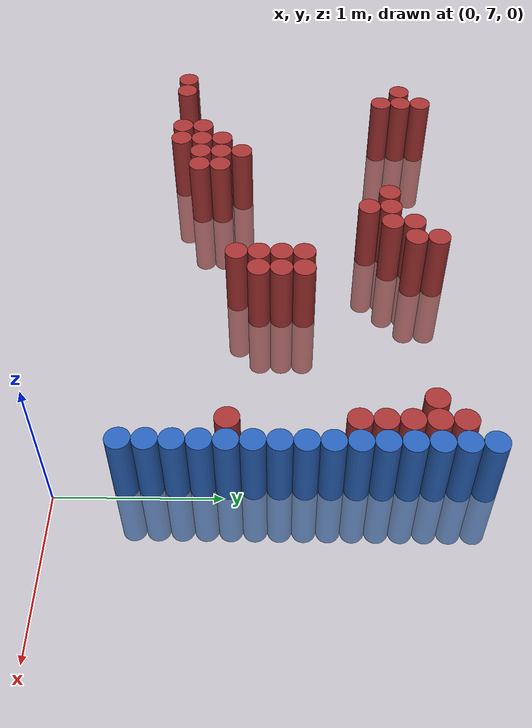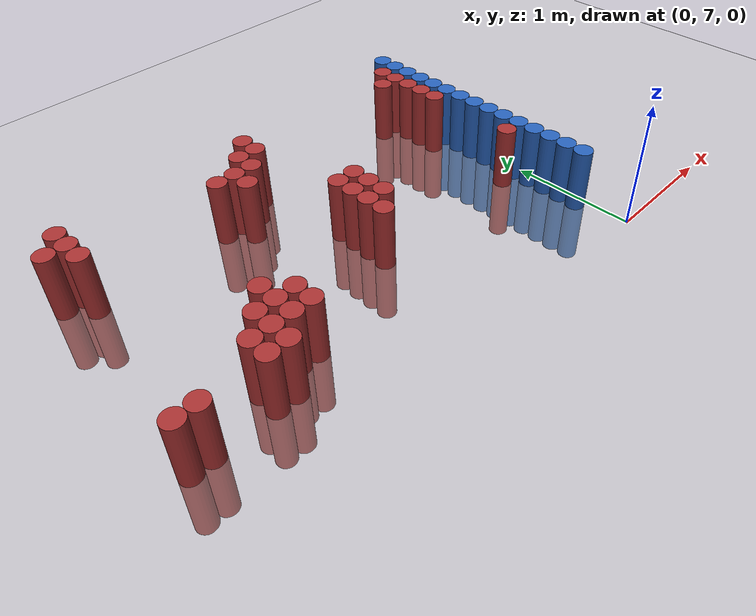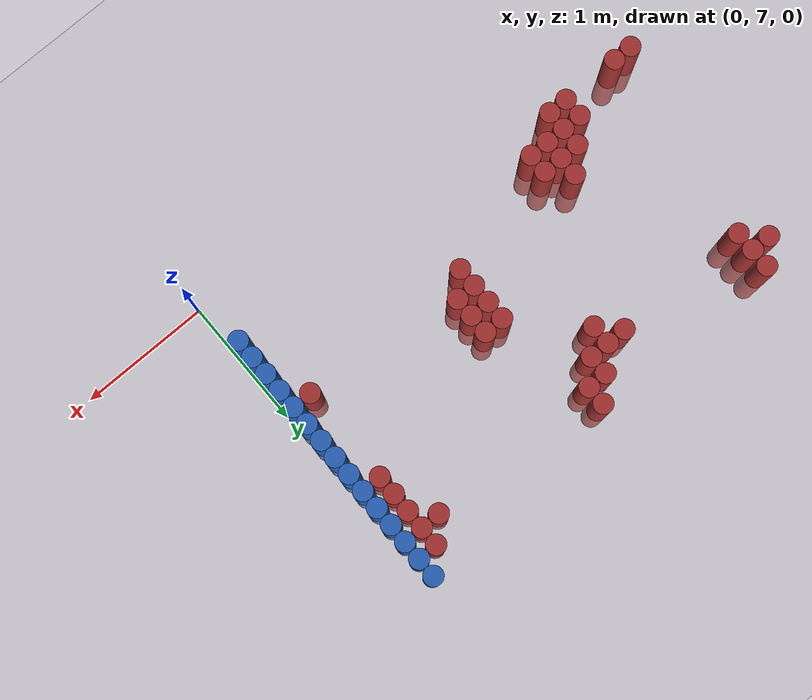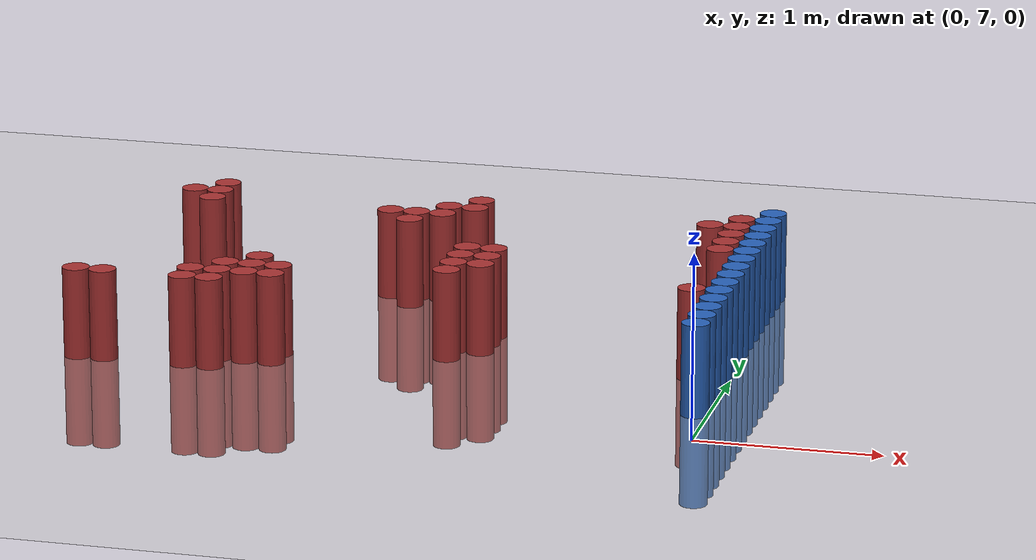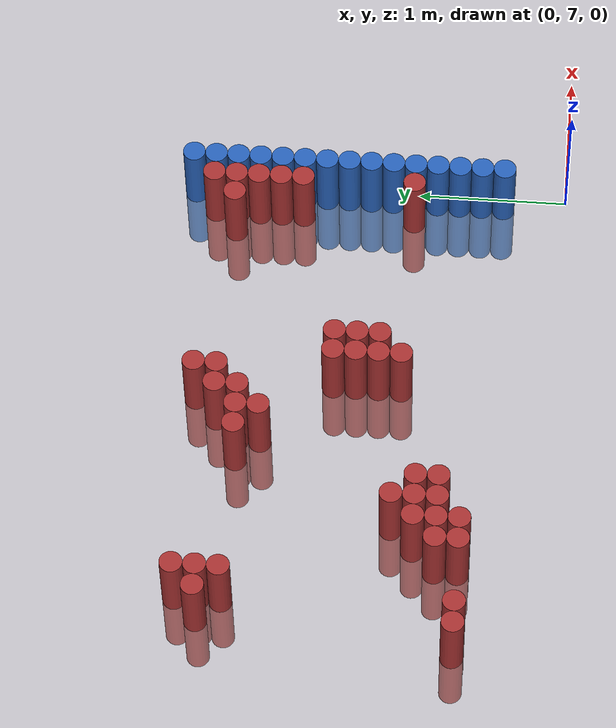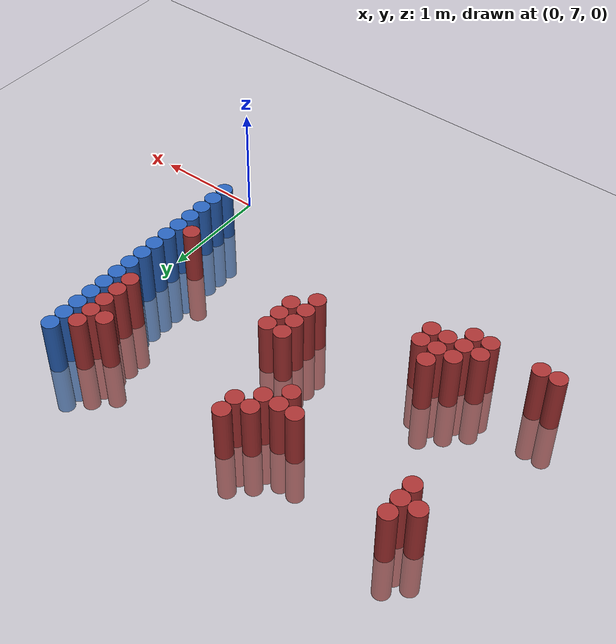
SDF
<sdf version="1.6">
 <world name="default">
  <model name="ground_plane">
   <static>1</static>
   <link name="link">
    <collision name="collision">
     <geometry><plane><normal>0 0 1</normal><size>100 100</size></plane></geometry>
     <surface><friction><ode><mu>100</mu><mu2>50</mu2></ode></friction></surface>
    </collision>
    <visual name="visual">
     <cast_shadows>0</cast_shadows>
     <geometry><plane><normal>0 0 1</normal><size>100 100</size></plane></geometry>
     <material>
      <script><uri>file://media/materials/scripts/gazebo.material</uri><name>Gazebo/Grey</name></script>
     </material>
    </visual>
   </link>
  </model>
  <model name="unit_cylinder_158">
   <static>1</static>
   <pose>-3.525000 7.575000 0.000000 0.000000 0.000000 0.000000</pose>
   <link name="link">
    <inertial>
     <mass>1</mass>
     <inertia><ixx>0.145833</ixx><ixy>0</ixy><ixz>0</ixz><iyy>0.145833</iyy><iyz>0</iyz><izz>0.125</izz></inertia>
    </inertial>
    <collision name="collision">
     <geometry><cylinder><radius>0.075000</radius><length>1</length></cylinder></geometry>
    </collision>
    <visual name="visual">
     <geometry><cylinder><radius>0.075000</radius><length>1</length></cylinder></geometry>
     <material>
      <ambient>0.648000 0.192000 0.192000 1</ambient>
      <diffuse>0.648000 0.192000 0.192000 1</diffuse>
     </material>
     <material>
      <script><name>Gazebo/Grey</name><uri>file://media/materials/scripts/gazebo.material</uri></script>
     </material>
    </visual>
   </link>
  </model>
  <model name="unit_cylinder_165">
   <static>1</static>
   <pose>-3.375000 7.575000 0.000000 0.000000 0.000000 0.000000</pose>
   <link name="link">
    <inertial>
     <mass>1</mass>
     <inertia><ixx>0.145833</ixx><ixy>0</ixy><ixz>0</ixz><iyy>0.145833</iyy><iyz>0</iyz><izz>0.125</izz></inertia>
    </inertial>
    <collision name="collision">
     <geometry><cylinder><radius>0.075000</radius><length>1</length></cylinder></geometry>
    </collision>
    <visual name="visual">
     <geometry><cylinder><radius>0.075000</radius><length>1</length></cylinder></geometry>
     <material>
      <ambient>0.648000 0.192000 0.192000 1</ambient>
      <diffuse>0.648000 0.192000 0.192000 1</diffuse>
     </material>
     <material>
      <script><name>Gazebo/Grey</name><uri>file://media/materials/scripts/gazebo.material</uri></script>
     </material>
    </visual>
   </link>
  </model>
  <model name="unit_cylinder_166">
   <static>1</static>
   <pose>-3.375000 9.225000 0.000000 0.000000 0.000000 0.000000</pose>
   <link name="link">
    <inertial>
     <mass>1</mass>
     <inertia><ixx>0.145833</ixx><ixy>0</ixy><ixz>0</ixz><iyy>0.145833</iyy><iyz>0</iyz><izz>0.125</izz></inertia>
    </inertial>
    <collision name="collision">
     <geometry><cylinder><radius>0.075000</radius><length>1</length></cylinder></geometry>
    </collision>
    <visual name="visual">
     <geometry><cylinder><radius>0.075000</radius><length>1</length></cylinder></geometry>
     <material>
      <ambient>0.648000 0.192000 0.192000 1</ambient>
      <diffuse>0.648000 0.192000 0.192000 1</diffuse>
     </material>
     <material>
      <script><name>Gazebo/Grey</name><uri>file://media/materials/scripts/gazebo.material</uri></script>
     </material>
    </visual>
   </link>
  </model>
  <model name="unit_cylinder_171">
   <static>1</static>
   <pose>-3.225000 9.075000 0.000000 0.000000 0.000000 0.000000</pose>
   <link name="link">
    <inertial>
     <mass>1</mass>
     <inertia><ixx>0.145833</ixx><ixy>0</ixy><ixz>0</ixz><iyy>0.145833</iyy><iyz>0</iyz><izz>0.125</izz></inertia>
    </inertial>
    <collision name="collision">
     <geometry><cylinder><radius>0.075000</radius><length>1</length></cylinder></geometry>
    </collision>
    <visual name="visual">
     <geometry><cylinder><radius>0.075000</radius><length>1</length></cylinder></geometry>
     <material>
      <ambient>0.648000 0.192000 0.192000 1</ambient>
      <diffuse>0.648000 0.192000 0.192000 1</diffuse>
     </material>
     <material>
      <script><name>Gazebo/Grey</name><uri>file://media/materials/scripts/gazebo.material</uri></script>
     </material>
    </visual>
   </link>
  </model>
  <model name="unit_cylinder_172">
   <static>1</static>
   <pose>-3.225000 9.225000 0.000000 0.000000 0.000000 0.000000</pose>
   <link name="link">
    <inertial>
     <mass>1</mass>
     <inertia><ixx>0.145833</ixx><ixy>0</ixy><ixz>0</ixz><iyy>0.145833</iyy><iyz>0</iyz><izz>0.125</izz></inertia>
    </inertial>
    <collision name="collision">
     <geometry><cylinder><radius>0.075000</radius><length>1</length></cylinder></geometry>
    </collision>
    <visual name="visual">
     <geometry><cylinder><radius>0.075000</radius><length>1</length></cylinder></geometry>
     <material>
      <ambient>0.648000 0.192000 0.192000 1</ambient>
      <diffuse>0.648000 0.192000 0.192000 1</diffuse>
     </material>
     <material>
      <script><name>Gazebo/Grey</name><uri>file://media/materials/scripts/gazebo.material</uri></script>
     </material>
    </visual>
   </link>
  </model>
  <model name="unit_cylinder_173">
   <static>1</static>
   <pose>-3.225000 9.375000 0.000000 0.000000 0.000000 0.000000</pose>
   <link name="link">
    <inertial>
     <mass>1</mass>
     <inertia><ixx>0.145833</ixx><ixy>0</ixy><ixz>0</ixz><iyy>0.145833</iyy><iyz>0</iyz><izz>0.125</izz></inertia>
    </inertial>
    <collision name="collision">
     <geometry><cylinder><radius>0.075000</radius><length>1</length></cylinder></geometry>
    </collision>
    <visual name="visual">
     <geometry><cylinder><radius>0.075000</radius><length>1</length></cylinder></geometry>
     <material>
      <ambient>0.648000 0.192000 0.192000 1</ambient>
      <diffuse>0.648000 0.192000 0.192000 1</diffuse>
     </material>
     <material>
      <script><name>Gazebo/Grey</name><uri>file://media/materials/scripts/gazebo.material</uri></script>
     </material>
    </visual>
   </link>
  </model>
  <model name="unit_cylinder_179">
   <static>1</static>
   <pose>-2.925000 7.575000 0.000000 0.000000 0.000000 0.000000</pose>
   <link name="link">
    <inertial>
     <mass>1</mass>
     <inertia><ixx>0.145833</ixx><ixy>0</ixy><ixz>0</ixz><iyy>0.145833</iyy><iyz>0</iyz><izz>0.125</izz></inertia>
    </inertial>
    <collision name="collision">
     <geometry><cylinder><radius>0.075000</radius><length>1</length></cylinder></geometry>
    </collision>
    <visual name="visual">
     <geometry><cylinder><radius>0.075000</radius><length>1</length></cylinder></geometry>
     <material>
      <ambient>0.648000 0.192000 0.192000 1</ambient>
      <diffuse>0.648000 0.192000 0.192000 1</diffuse>
     </material>
     <material>
      <script><name>Gazebo/Grey</name><uri>file://media/materials/scripts/gazebo.material</uri></script>
     </material>
    </visual>
   </link>
  </model>
  <model name="unit_cylinder_180">
   <static>1</static>
   <pose>-2.925000 7.725000 0.000000 0.000000 0.000000 0.000000</pose>
   <link name="link">
    <inertial>
     <mass>1</mass>
     <inertia><ixx>0.145833</ixx><ixy>0</ixy><ixz>0</ixz><iyy>0.145833</iyy><iyz>0</iyz><izz>0.125</izz></inertia>
    </inertial>
    <collision name="collision">
     <geometry><cylinder><radius>0.075000</radius><length>1</length></cylinder></geometry>
    </collision>
    <visual name="visual">
     <geometry><cylinder><radius>0.075000</radius><length>1</length></cylinder></geometry>
     <material>
      <ambient>0.648000 0.192000 0.192000 1</ambient>
      <diffuse>0.648000 0.192000 0.192000 1</diffuse>
     </material>
     <material>
      <script><name>Gazebo/Grey</name><uri>file://media/materials/scripts/gazebo.material</uri></script>
     </material>
    </visual>
   </link>
  </model>
  <model name="unit_cylinder_184">
   <static>1</static>
   <pose>-2.775000 7.575000 0.000000 0.000000 0.000000 0.000000</pose>
   <link name="link">
    <inertial>
     <mass>1</mass>
     <inertia><ixx>0.145833</ixx><ixy>0</ixy><ixz>0</ixz><iyy>0.145833</iyy><iyz>0</iyz><izz>0.125</izz></inertia>
    </inertial>
    <collision name="collision">
     <geometry><cylinder><radius>0.075000</radius><length>1</length></cylinder></geometry>
    </collision>
    <visual name="visual">
     <geometry><cylinder><radius>0.075000</radius><length>1</length></cylinder></geometry>
     <material>
      <ambient>0.648000 0.192000 0.192000 1</ambient>
      <diffuse>0.648000 0.192000 0.192000 1</diffuse>
     </material>
     <material>
      <script><name>Gazebo/Grey</name><uri>file://media/materials/scripts/gazebo.material</uri></script>
     </material>
    </visual>
   </link>
  </model>
  <model name="unit_cylinder_185">
   <static>1</static>
   <pose>-2.775000 7.725000 0.000000 0.000000 0.000000 0.000000</pose>
   <link name="link">
    <inertial>
     <mass>1</mass>
     <inertia><ixx>0.145833</ixx><ixy>0</ixy><ixz>0</ixz><iyy>0.145833</iyy><iyz>0</iyz><izz>0.125</izz></inertia>
    </inertial>
    <collision name="collision">
     <geometry><cylinder><radius>0.075000</radius><length>1</length></cylinder></geometry>
    </collision>
    <visual name="visual">
     <geometry><cylinder><radius>0.075000</radius><length>1</length></cylinder></geometry>
     <material>
      <ambient>0.648000 0.192000 0.192000 1</ambient>
      <diffuse>0.648000 0.192000 0.192000 1</diffuse>
     </material>
     <material>
      <script><name>Gazebo/Grey</name><uri>file://media/materials/scripts/gazebo.material</uri></script>
     </material>
    </visual>
   </link>
  </model>
  <model name="unit_cylinder_186">
   <static>1</static>
   <pose>-2.775000 7.875000 0.000000 0.000000 0.000000 0.000000</pose>
   <link name="link">
    <inertial>
     <mass>1</mass>
     <inertia><ixx>0.145833</ixx><ixy>0</ixy><ixz>0</ixz><iyy>0.145833</iyy><iyz>0</iyz><izz>0.125</izz></inertia>
    </inertial>
    <collision name="collision">
     <geometry><cylinder><radius>0.075000</radius><length>1</length></cylinder></geometry>
    </collision>
    <visual name="visual">
     <geometry><cylinder><radius>0.075000</radius><length>1</length></cylinder></geometry>
     <material>
      <ambient>0.648000 0.192000 0.192000 1</ambient>
      <diffuse>0.648000 0.192000 0.192000 1</diffuse>
     </material>
     <material>
      <script><name>Gazebo/Grey</name><uri>file://media/materials/scripts/gazebo.material</uri></script>
     </material>
    </visual>
   </link>
  </model>
  <model name="unit_cylinder_189">
   <static>1</static>
   <pose>-2.625000 7.725000 0.000000 0.000000 0.000000 0.000000</pose>
   <link name="link">
    <inertial>
     <mass>1</mass>
     <inertia><ixx>0.145833</ixx><ixy>0</ixy><ixz>0</ixz><iyy>0.145833</iyy><iyz>0</iyz><izz>0.125</izz></inertia>
    </inertial>
    <collision name="collision">
     <geometry><cylinder><radius>0.075000</radius><length>1</length></cylinder></geometry>
    </collision>
    <visual name="visual">
     <geometry><cylinder><radius>0.075000</radius><length>1</length></cylinder></geometry>
     <material>
      <ambient>0.648000 0.192000 0.192000 1</ambient>
      <diffuse>0.648000 0.192000 0.192000 1</diffuse>
     </material>
     <material>
      <script><name>Gazebo/Grey</name><uri>file://media/materials/scripts/gazebo.material</uri></script>
     </material>
    </visual>
   </link>
  </model>
  <model name="unit_cylinder_190">
   <static>1</static>
   <pose>-2.625000 7.875000 0.000000 0.000000 0.000000 0.000000</pose>
   <link name="link">
    <inertial>
     <mass>1</mass>
     <inertia><ixx>0.145833</ixx><ixy>0</ixy><ixz>0</ixz><iyy>0.145833</iyy><iyz>0</iyz><izz>0.125</izz></inertia>
    </inertial>
    <collision name="collision">
     <geometry><cylinder><radius>0.075000</radius><length>1</length></cylinder></geometry>
    </collision>
    <visual name="visual">
     <geometry><cylinder><radius>0.075000</radius><length>1</length></cylinder></geometry>
     <material>
      <ambient>0.648000 0.192000 0.192000 1</ambient>
      <diffuse>0.648000 0.192000 0.192000 1</diffuse>
     </material>
     <material>
      <script><name>Gazebo/Grey</name><uri>file://media/materials/scripts/gazebo.material</uri></script>
     </material>
    </visual>
   </link>
  </model>
  <model name="unit_cylinder_191">
   <static>1</static>
   <pose>-2.625000 8.025000 0.000000 0.000000 0.000000 0.000000</pose>
   <link name="link">
    <inertial>
     <mass>1</mass>
     <inertia><ixx>0.145833</ixx><ixy>0</ixy><ixz>0</ixz><iyy>0.145833</iyy><iyz>0</iyz><izz>0.125</izz></inertia>
    </inertial>
    <collision name="collision">
     <geometry><cylinder><radius>0.075000</radius><length>1</length></cylinder></geometry>
    </collision>
    <visual name="visual">
     <geometry><cylinder><radius>0.075000</radius><length>1</length></cylinder></geometry>
     <material>
      <ambient>0.648000 0.192000 0.192000 1</ambient>
      <diffuse>0.648000 0.192000 0.192000 1</diffuse>
     </material>
     <material>
      <script><name>Gazebo/Grey</name><uri>file://media/materials/scripts/gazebo.material</uri></script>
     </material>
    </visual>
   </link>
  </model>
  <model name="unit_cylinder_192">
   <static>1</static>
   <pose>-2.475000 7.725000 0.000000 0.000000 0.000000 0.000000</pose>
   <link name="link">
    <inertial>
     <mass>1</mass>
     <inertia><ixx>0.145833</ixx><ixy>0</ixy><ixz>0</ixz><iyy>0.145833</iyy><iyz>0</iyz><izz>0.125</izz></inertia>
    </inertial>
    <collision name="collision">
     <geometry><cylinder><radius>0.075000</radius><length>1</length></cylinder></geometry>
    </collision>
    <visual name="visual">
     <geometry><cylinder><radius>0.075000</radius><length>1</length></cylinder></geometry>
     <material>
      <ambient>0.648000 0.192000 0.192000 1</ambient>
      <diffuse>0.648000 0.192000 0.192000 1</diffuse>
     </material>
     <material>
      <script><name>Gazebo/Grey</name><uri>file://media/materials/scripts/gazebo.material</uri></script>
     </material>
    </visual>
   </link>
  </model>
  <model name="unit_cylinder_193">
   <static>1</static>
   <pose>-2.475000 7.875000 0.000000 0.000000 0.000000 0.000000</pose>
   <link name="link">
    <inertial>
     <mass>1</mass>
     <inertia><ixx>0.145833</ixx><ixy>0</ixy><ixz>0</ixz><iyy>0.145833</iyy><iyz>0</iyz><izz>0.125</izz></inertia>
    </inertial>
    <collision name="collision">
     <geometry><cylinder><radius>0.075000</radius><length>1</length></cylinder></geometry>
    </collision>
    <visual name="visual">
     <geometry><cylinder><radius>0.075000</radius><length>1</length></cylinder></geometry>
     <material>
      <ambient>0.648000 0.192000 0.192000 1</ambient>
      <diffuse>0.648000 0.192000 0.192000 1</diffuse>
     </material>
     <material>
      <script><name>Gazebo/Grey</name><uri>file://media/materials/scripts/gazebo.material</uri></script>
     </material>
    </visual>
   </link>
  </model>
  <model name="unit_cylinder_194">
   <static>1</static>
   <pose>-2.175000 9.075000 0.000000 0.000000 0.000000 0.000000</pose>
   <link name="link">
    <inertial>
     <mass>1</mass>
     <inertia><ixx>0.145833</ixx><ixy>0</ixy><ixz>0</ixz><iyy>0.145833</iyy><iyz>0</iyz><izz>0.125</izz></inertia>
    </inertial>
    <collision name="collision">
     <geometry><cylinder><radius>0.075000</radius><length>1</length></cylinder></geometry>
    </collision>
    <visual name="visual">
     <geometry><cylinder><radius>0.075000</radius><length>1</length></cylinder></geometry>
     <material>
      <ambient>0.648000 0.192000 0.192000 1</ambient>
      <diffuse>0.648000 0.192000 0.192000 1</diffuse>
     </material>
     <material>
      <script><name>Gazebo/Grey</name><uri>file://media/materials/scripts/gazebo.material</uri></script>
     </material>
    </visual>
   </link>
  </model>
  <model name="unit_cylinder_195">
   <static>1</static>
   <pose>-2.025000 8.925000 0.000000 0.000000 0.000000 0.000000</pose>
   <link name="link">
    <inertial>
     <mass>1</mass>
     <inertia><ixx>0.145833</ixx><ixy>0</ixy><ixz>0</ixz><iyy>0.145833</iyy><iyz>0</iyz><izz>0.125</izz></inertia>
    </inertial>
    <collision name="collision">
     <geometry><cylinder><radius>0.075000</radius><length>1</length></cylinder></geometry>
    </collision>
    <visual name="visual">
     <geometry><cylinder><radius>0.075000</radius><length>1</length></cylinder></geometry>
     <material>
      <ambient>0.648000 0.192000 0.192000 1</ambient>
      <diffuse>0.648000 0.192000 0.192000 1</diffuse>
     </material>
     <material>
      <script><name>Gazebo/Grey</name><uri>file://media/materials/scripts/gazebo.material</uri></script>
     </material>
    </visual>
   </link>
  </model>
  <model name="unit_cylinder_196">
   <static>1</static>
   <pose>-2.025000 9.075000 0.000000 0.000000 0.000000 0.000000</pose>
   <link name="link">
    <inertial>
     <mass>1</mass>
     <inertia><ixx>0.145833</ixx><ixy>0</ixy><ixz>0</ixz><iyy>0.145833</iyy><iyz>0</iyz><izz>0.125</izz></inertia>
    </inertial>
    <collision name="collision">
     <geometry><cylinder><radius>0.075000</radius><length>1</length></cylinder></geometry>
    </collision>
    <visual name="visual">
     <geometry><cylinder><radius>0.075000</radius><length>1</length></cylinder></geometry>
     <material>
      <ambient>0.648000 0.192000 0.192000 1</ambient>
      <diffuse>0.648000 0.192000 0.192000 1</diffuse>
     </material>
     <material>
      <script><name>Gazebo/Grey</name><uri>file://media/materials/scripts/gazebo.material</uri></script>
     </material>
    </visual>
   </link>
  </model>
  <model name="unit_cylinder_197">
   <static>1</static>
   <pose>-1.875000 9.075000 0.000000 0.000000 0.000000 0.000000</pose>
   <link name="link">
    <inertial>
     <mass>1</mass>
     <inertia><ixx>0.145833</ixx><ixy>0</ixy><ixz>0</ixz><iyy>0.145833</iyy><iyz>0</iyz><izz>0.125</izz></inertia>
    </inertial>
    <collision name="collision">
     <geometry><cylinder><radius>0.075000</radius><length>1</length></cylinder></geometry>
    </collision>
    <visual name="visual">
     <geometry><cylinder><radius>0.075000</radius><length>1</length></cylinder></geometry>
     <material>
      <ambient>0.648000 0.192000 0.192000 1</ambient>
      <diffuse>0.648000 0.192000 0.192000 1</diffuse>
     </material>
     <material>
      <script><name>Gazebo/Grey</name><uri>file://media/materials/scripts/gazebo.material</uri></script>
     </material>
    </visual>
   </link>
  </model>
  <model name="unit_cylinder_198">
   <static>1</static>
   <pose>-1.875000 9.225000 0.000000 0.000000 0.000000 0.000000</pose>
   <link name="link">
    <inertial>
     <mass>1</mass>
     <inertia><ixx>0.145833</ixx><ixy>0</ixy><ixz>0</ixz><iyy>0.145833</iyy><iyz>0</iyz><izz>0.125</izz></inertia>
    </inertial>
    <collision name="collision">
     <geometry><cylinder><radius>0.075000</radius><length>1</length></cylinder></geometry>
    </collision>
    <visual name="visual">
     <geometry><cylinder><radius>0.075000</radius><length>1</length></cylinder></geometry>
     <material>
      <ambient>0.648000 0.192000 0.192000 1</ambient>
      <diffuse>0.648000 0.192000 0.192000 1</diffuse>
     </material>
     <material>
      <script><name>Gazebo/Grey</name><uri>file://media/materials/scripts/gazebo.material</uri></script>
     </material>
    </visual>
   </link>
  </model>
  <model name="unit_cylinder_199">
   <static>1</static>
   <pose>-1.725000 9.225000 0.000000 0.000000 0.000000 0.000000</pose>
   <link name="link">
    <inertial>
     <mass>1</mass>
     <inertia><ixx>0.145833</ixx><ixy>0</ixy><ixz>0</ixz><iyy>0.145833</iyy><iyz>0</iyz><izz>0.125</izz></inertia>
    </inertial>
    <collision name="collision">
     <geometry><cylinder><radius>0.075000</radius><length>1</length></cylinder></geometry>
    </collision>
    <visual name="visual">
     <geometry><cylinder><radius>0.075000</radius><length>1</length></cylinder></geometry>
     <material>
      <ambient>0.648000 0.192000 0.192000 1</ambient>
      <diffuse>0.648000 0.192000 0.192000 1</diffuse>
     </material>
     <material>
      <script><name>Gazebo/Grey</name><uri>file://media/materials/scripts/gazebo.material</uri></script>
     </material>
    </visual>
   </link>
  </model>
  <model name="unit_cylinder_200">
   <static>1</static>
   <pose>-1.725000 9.375000 0.000000 0.000000 0.000000 0.000000</pose>
   <link name="link">
    <inertial>
     <mass>1</mass>
     <inertia><ixx>0.145833</ixx><ixy>0</ixy><ixz>0</ixz><iyy>0.145833</iyy><iyz>0</iyz><izz>0.125</izz></inertia>
    </inertial>
    <collision name="collision">
     <geometry><cylinder><radius>0.075000</radius><length>1</length></cylinder></geometry>
    </collision>
    <visual name="visual">
     <geometry><cylinder><radius>0.075000</radius><length>1</length></cylinder></geometry>
     <material>
      <ambient>0.648000 0.192000 0.192000 1</ambient>
      <diffuse>0.648000 0.192000 0.192000 1</diffuse>
     </material>
     <material>
      <script><name>Gazebo/Grey</name><uri>file://media/materials/scripts/gazebo.material</uri></script>
     </material>
    </visual>
   </link>
  </model>
  <model name="unit_cylinder_201">
   <static>1</static>
   <pose>-1.575000 8.025000 0.000000 0.000000 0.000000 0.000000</pose>
   <link name="link">
    <inertial>
     <mass>1</mass>
     <inertia><ixx>0.145833</ixx><ixy>0</ixy><ixz>0</ixz><iyy>0.145833</iyy><iyz>0</iyz><izz>0.125</izz></inertia>
    </inertial>
    <collision name="collision">
     <geometry><cylinder><radius>0.075000</radius><length>1</length></cylinder></geometry>
    </collision>
    <visual name="visual">
     <geometry><cylinder><radius>0.075000</radius><length>1</length></cylinder></geometry>
     <material>
      <ambient>0.648000 0.192000 0.192000 1</ambient>
      <diffuse>0.648000 0.192000 0.192000 1</diffuse>
     </material>
     <material>
      <script><name>Gazebo/Grey</name><uri>file://media/materials/scripts/gazebo.material</uri></script>
     </material>
    </visual>
   </link>
  </model>
  <model name="unit_cylinder_202">
   <static>1</static>
   <pose>-1.575000 8.175000 0.000000 0.000000 0.000000 0.000000</pose>
   <link name="link">
    <inertial>
     <mass>1</mass>
     <inertia><ixx>0.145833</ixx><ixy>0</ixy><ixz>0</ixz><iyy>0.145833</iyy><iyz>0</iyz><izz>0.125</izz></inertia>
    </inertial>
    <collision name="collision">
     <geometry><cylinder><radius>0.075000</radius><length>1</length></cylinder></geometry>
    </collision>
    <visual name="visual">
     <geometry><cylinder><radius>0.075000</radius><length>1</length></cylinder></geometry>
     <material>
      <ambient>0.648000 0.192000 0.192000 1</ambient>
      <diffuse>0.648000 0.192000 0.192000 1</diffuse>
     </material>
     <material>
      <script><name>Gazebo/Grey</name><uri>file://media/materials/scripts/gazebo.material</uri></script>
     </material>
    </visual>
   </link>
  </model>
  <model name="unit_cylinder_203">
   <static>1</static>
   <pose>-1.575000 8.325000 0.000000 0.000000 0.000000 0.000000</pose>
   <link name="link">
    <inertial>
     <mass>1</mass>
     <inertia><ixx>0.145833</ixx><ixy>0</ixy><ixz>0</ixz><iyy>0.145833</iyy><iyz>0</iyz><izz>0.125</izz></inertia>
    </inertial>
    <collision name="collision">
     <geometry><cylinder><radius>0.075000</radius><length>1</length></cylinder></geometry>
    </collision>
    <visual name="visual">
     <geometry><cylinder><radius>0.075000</radius><length>1</length></cylinder></geometry>
     <material>
      <ambient>0.648000 0.192000 0.192000 1</ambient>
      <diffuse>0.648000 0.192000 0.192000 1</diffuse>
     </material>
     <material>
      <script><name>Gazebo/Grey</name><uri>file://media/materials/scripts/gazebo.material</uri></script>
     </material>
    </visual>
   </link>
  </model>
  <model name="unit_cylinder_204">
   <static>1</static>
   <pose>-1.575000 8.475000 0.000000 0.000000 0.000000 0.000000</pose>
   <link name="link">
    <inertial>
     <mass>1</mass>
     <inertia><ixx>0.145833</ixx><ixy>0</ixy><ixz>0</ixz><iyy>0.145833</iyy><iyz>0</iyz><izz>0.125</izz></inertia>
    </inertial>
    <collision name="collision">
     <geometry><cylinder><radius>0.075000</radius><length>1</length></cylinder></geometry>
    </collision>
    <visual name="visual">
     <geometry><cylinder><radius>0.075000</radius><length>1</length></cylinder></geometry>
     <material>
      <ambient>0.648000 0.192000 0.192000 1</ambient>
      <diffuse>0.648000 0.192000 0.192000 1</diffuse>
     </material>
     <material>
      <script><name>Gazebo/Grey</name><uri>file://media/materials/scripts/gazebo.material</uri></script>
     </material>
    </visual>
   </link>
  </model>
  <model name="unit_cylinder_205">
   <static>1</static>
   <pose>-1.425000 8.175000 0.000000 0.000000 0.000000 0.000000</pose>
   <link name="link">
    <inertial>
     <mass>1</mass>
     <inertia><ixx>0.145833</ixx><ixy>0</ixy><ixz>0</ixz><iyy>0.145833</iyy><iyz>0</iyz><izz>0.125</izz></inertia>
    </inertial>
    <collision name="collision">
     <geometry><cylinder><radius>0.075000</radius><length>1</length></cylinder></geometry>
    </collision>
    <visual name="visual">
     <geometry><cylinder><radius>0.075000</radius><length>1</length></cylinder></geometry>
     <material>
      <ambient>0.648000 0.192000 0.192000 1</ambient>
      <diffuse>0.648000 0.192000 0.192000 1</diffuse>
     </material>
     <material>
      <script><name>Gazebo/Grey</name><uri>file://media/materials/scripts/gazebo.material</uri></script>
     </material>
    </visual>
   </link>
  </model>
  <model name="unit_cylinder_206">
   <static>1</static>
   <pose>-1.425000 8.325000 0.000000 0.000000 0.000000 0.000000</pose>
   <link name="link">
    <inertial>
     <mass>1</mass>
     <inertia><ixx>0.145833</ixx><ixy>0</ixy><ixz>0</ixz><iyy>0.145833</iyy><iyz>0</iyz><izz>0.125</izz></inertia>
    </inertial>
    <collision name="collision">
     <geometry><cylinder><radius>0.075000</radius><length>1</length></cylinder></geometry>
    </collision>
    <visual name="visual">
     <geometry><cylinder><radius>0.075000</radius><length>1</length></cylinder></geometry>
     <material>
      <ambient>0.648000 0.192000 0.192000 1</ambient>
      <diffuse>0.648000 0.192000 0.192000 1</diffuse>
     </material>
     <material>
      <script><name>Gazebo/Grey</name><uri>file://media/materials/scripts/gazebo.material</uri></script>
     </material>
    </visual>
   </link>
  </model>
  <model name="unit_cylinder_207">
   <static>1</static>
   <pose>-1.425000 8.475000 0.000000 0.000000 0.000000 0.000000</pose>
   <link name="link">
    <inertial>
     <mass>1</mass>
     <inertia><ixx>0.145833</ixx><ixy>0</ixy><ixz>0</ixz><iyy>0.145833</iyy><iyz>0</iyz><izz>0.125</izz></inertia>
    </inertial>
    <collision name="collision">
     <geometry><cylinder><radius>0.075000</radius><length>1</length></cylinder></geometry>
    </collision>
    <visual name="visual">
     <geometry><cylinder><radius>0.075000</radius><length>1</length></cylinder></geometry>
     <material>
      <ambient>0.648000 0.192000 0.192000 1</ambient>
      <diffuse>0.648000 0.192000 0.192000 1</diffuse>
     </material>
     <material>
      <script><name>Gazebo/Grey</name><uri>file://media/materials/scripts/gazebo.material</uri></script>
     </material>
    </visual>
   </link>
  </model>
  <model name="unit_cylinder_213">
   <static>1</static>
   <pose>-0.375000 9.225000 0.000000 0.000000 0.000000 0.000000</pose>
   <link name="link">
    <inertial>
     <mass>1</mass>
     <inertia><ixx>0.145833</ixx><ixy>0</ixy><ixz>0</ixz><iyy>0.145833</iyy><iyz>0</iyz><izz>0.125</izz></inertia>
    </inertial>
    <collision name="collision">
     <geometry><cylinder><radius>0.075000</radius><length>1</length></cylinder></geometry>
    </collision>
    <visual name="visual">
     <geometry><cylinder><radius>0.075000</radius><length>1</length></cylinder></geometry>
     <material>
      <ambient>0.648000 0.192000 0.192000 1</ambient>
      <diffuse>0.648000 0.192000 0.192000 1</diffuse>
     </material>
     <material>
      <script><name>Gazebo/Grey</name><uri>file://media/materials/scripts/gazebo.material</uri></script>
     </material>
    </visual>
   </link>
  </model>
  <model name="unit_cylinder_221">
   <static>1</static>
   <pose>-0.225000 8.025000 0.000000 0.000000 0.000000 0.000000</pose>
   <link name="link">
    <inertial>
     <mass>1</mass>
     <inertia><ixx>0.145833</ixx><ixy>0</ixy><ixz>0</ixz><iyy>0.145833</iyy><iyz>0</iyz><izz>0.125</izz></inertia>
    </inertial>
    <collision name="collision">
     <geometry><cylinder><radius>0.075000</radius><length>1</length></cylinder></geometry>
    </collision>
    <visual name="visual">
     <geometry><cylinder><radius>0.075000</radius><length>1</length></cylinder></geometry>
     <material>
      <ambient>0.648000 0.192000 0.192000 1</ambient>
      <diffuse>0.648000 0.192000 0.192000 1</diffuse>
     </material>
     <material>
      <script><name>Gazebo/Grey</name><uri>file://media/materials/scripts/gazebo.material</uri></script>
     </material>
    </visual>
   </link>
  </model>
  <model name="unit_cylinder_222">
   <static>1</static>
   <pose>-0.225000 8.775000 0.000000 0.000000 0.000000 0.000000</pose>
   <link name="link">
    <inertial>
     <mass>1</mass>
     <inertia><ixx>0.145833</ixx><ixy>0</ixy><ixz>0</ixz><iyy>0.145833</iyy><iyz>0</iyz><izz>0.125</izz></inertia>
    </inertial>
    <collision name="collision">
     <geometry><cylinder><radius>0.075000</radius><length>1</length></cylinder></geometry>
    </collision>
    <visual name="visual">
     <geometry><cylinder><radius>0.075000</radius><length>1</length></cylinder></geometry>
     <material>
      <ambient>0.648000 0.192000 0.192000 1</ambient>
      <diffuse>0.648000 0.192000 0.192000 1</diffuse>
     </material>
     <material>
      <script><name>Gazebo/Grey</name><uri>file://media/materials/scripts/gazebo.material</uri></script>
     </material>
    </visual>
   </link>
  </model>
  <model name="unit_cylinder_223">
   <static>1</static>
   <pose>-0.225000 8.925000 0.000000 0.000000 0.000000 0.000000</pose>
   <link name="link">
    <inertial>
     <mass>1</mass>
     <inertia><ixx>0.145833</ixx><ixy>0</ixy><ixz>0</ixz><iyy>0.145833</iyy><iyz>0</iyz><izz>0.125</izz></inertia>
    </inertial>
    <collision name="collision">
     <geometry><cylinder><radius>0.075000</radius><length>1</length></cylinder></geometry>
    </collision>
    <visual name="visual">
     <geometry><cylinder><radius>0.075000</radius><length>1</length></cylinder></geometry>
     <material>
      <ambient>0.648000 0.192000 0.192000 1</ambient>
      <diffuse>0.648000 0.192000 0.192000 1</diffuse>
     </material>
     <material>
      <script><name>Gazebo/Grey</name><uri>file://media/materials/scripts/gazebo.material</uri></script>
     </material>
    </visual>
   </link>
  </model>
  <model name="unit_cylinder_224">
   <static>1</static>
   <pose>-0.225000 9.075000 0.000000 0.000000 0.000000 0.000000</pose>
   <link name="link">
    <inertial>
     <mass>1</mass>
     <inertia><ixx>0.145833</ixx><ixy>0</ixy><ixz>0</ixz><iyy>0.145833</iyy><iyz>0</iyz><izz>0.125</izz></inertia>
    </inertial>
    <collision name="collision">
     <geometry><cylinder><radius>0.075000</radius><length>1</length></cylinder></geometry>
    </collision>
    <visual name="visual">
     <geometry><cylinder><radius>0.075000</radius><length>1</length></cylinder></geometry>
     <material>
      <ambient>0.648000 0.192000 0.192000 1</ambient>
      <diffuse>0.648000 0.192000 0.192000 1</diffuse>
     </material>
     <material>
      <script><name>Gazebo/Grey</name><uri>file://media/materials/scripts/gazebo.material</uri></script>
     </material>
    </visual>
   </link>
  </model>
  <model name="unit_cylinder_225">
   <static>1</static>
   <pose>-0.225000 9.225000 0.000000 0.000000 0.000000 0.000000</pose>
   <link name="link">
    <inertial>
     <mass>1</mass>
     <inertia><ixx>0.145833</ixx><ixy>0</ixy><ixz>0</ixz><iyy>0.145833</iyy><iyz>0</iyz><izz>0.125</izz></inertia>
    </inertial>
    <collision name="collision">
     <geometry><cylinder><radius>0.075000</radius><length>1</length></cylinder></geometry>
    </collision>
    <visual name="visual">
     <geometry><cylinder><radius>0.075000</radius><length>1</length></cylinder></geometry>
     <material>
      <ambient>0.648000 0.192000 0.192000 1</ambient>
      <diffuse>0.648000 0.192000 0.192000 1</diffuse>
     </material>
     <material>
      <script><name>Gazebo/Grey</name><uri>file://media/materials/scripts/gazebo.material</uri></script>
     </material>
    </visual>
   </link>
  </model>
  <model name="unit_cylinder_226">
   <static>1</static>
   <pose>-0.225000 9.375000 0.000000 0.000000 0.000000 0.000000</pose>
   <link name="link">
    <inertial>
     <mass>1</mass>
     <inertia><ixx>0.145833</ixx><ixy>0</ixy><ixz>0</ixz><iyy>0.145833</iyy><iyz>0</iyz><izz>0.125</izz></inertia>
    </inertial>
    <collision name="collision">
     <geometry><cylinder><radius>0.075000</radius><length>1</length></cylinder></geometry>
    </collision>
    <visual name="visual">
     <geometry><cylinder><radius>0.075000</radius><length>1</length></cylinder></geometry>
     <material>
      <ambient>0.648000 0.192000 0.192000 1</ambient>
      <diffuse>0.648000 0.192000 0.192000 1</diffuse>
     </material>
     <material>
      <script><name>Gazebo/Grey</name><uri>file://media/materials/scripts/gazebo.material</uri></script>
     </material>
    </visual>
   </link>
  </model>
  <model name="unit_cylinder_242">
   <static>1</static>
   <pose>-0.075000 7.425000 0.000000 0.000000 0.000000 0.000000</pose>
   <link name="link">
    <inertial>
     <mass>1</mass>
     <inertia><ixx>0.145833</ixx><ixy>0</ixy><ixz>0</ixz><iyy>0.145833</iyy><iyz>0</iyz><izz>0.125</izz></inertia>
    </inertial>
    <collision name="collision">
     <geometry><cylinder><radius>0.075000</radius><length>1</length></cylinder></geometry>
    </collision>
    <visual name="visual">
     <geometry><cylinder><radius>0.075000</radius><length>1</length></cylinder></geometry>
     <material>
      <ambient>0.152000 0.379000 0.720000 1</ambient>
      <diffuse>0.152000 0.379000 0.720000 1</diffuse>
     </material>
     <material>
      <script><name>Gazebo/Grey</name><uri>file://media/materials/scripts/gazebo.material</uri></script>
     </material>
    </visual>
   </link>
  </model>
  <model name="unit_cylinder_243">
   <static>1</static>
   <pose>-0.075000 7.575000 0.000000 0.000000 0.000000 0.000000</pose>
   <link name="link">
    <inertial>
     <mass>1</mass>
     <inertia><ixx>0.145833</ixx><ixy>0</ixy><ixz>0</ixz><iyy>0.145833</iyy><iyz>0</iyz><izz>0.125</izz></inertia>
    </inertial>
    <collision name="collision">
     <geometry><cylinder><radius>0.075000</radius><length>1</length></cylinder></geometry>
    </collision>
    <visual name="visual">
     <geometry><cylinder><radius>0.075000</radius><length>1</length></cylinder></geometry>
     <material>
      <ambient>0.152000 0.379000 0.720000 1</ambient>
      <diffuse>0.152000 0.379000 0.720000 1</diffuse>
     </material>
     <material>
      <script><name>Gazebo/Grey</name><uri>file://media/materials/scripts/gazebo.material</uri></script>
     </material>
    </visual>
   </link>
  </model>
  <model name="unit_cylinder_244">
   <static>1</static>
   <pose>-0.075000 7.725000 0.000000 0.000000 0.000000 0.000000</pose>
   <link name="link">
    <inertial>
     <mass>1</mass>
     <inertia><ixx>0.145833</ixx><ixy>0</ixy><ixz>0</ixz><iyy>0.145833</iyy><iyz>0</iyz><izz>0.125</izz></inertia>
    </inertial>
    <collision name="collision">
     <geometry><cylinder><radius>0.075000</radius><length>1</length></cylinder></geometry>
    </collision>
    <visual name="visual">
     <geometry><cylinder><radius>0.075000</radius><length>1</length></cylinder></geometry>
     <material>
      <ambient>0.152000 0.379000 0.720000 1</ambient>
      <diffuse>0.152000 0.379000 0.720000 1</diffuse>
     </material>
     <material>
      <script><name>Gazebo/Grey</name><uri>file://media/materials/scripts/gazebo.material</uri></script>
     </material>
    </visual>
   </link>
  </model>
  <model name="unit_cylinder_245">
   <static>1</static>
   <pose>-0.075000 7.875000 0.000000 0.000000 0.000000 0.000000</pose>
   <link name="link">
    <inertial>
     <mass>1</mass>
     <inertia><ixx>0.145833</ixx><ixy>0</ixy><ixz>0</ixz><iyy>0.145833</iyy><iyz>0</iyz><izz>0.125</izz></inertia>
    </inertial>
    <collision name="collision">
     <geometry><cylinder><radius>0.075000</radius><length>1</length></cylinder></geometry>
    </collision>
    <visual name="visual">
     <geometry><cylinder><radius>0.075000</radius><length>1</length></cylinder></geometry>
     <material>
      <ambient>0.152000 0.379000 0.720000 1</ambient>
      <diffuse>0.152000 0.379000 0.720000 1</diffuse>
     </material>
     <material>
      <script><name>Gazebo/Grey</name><uri>file://media/materials/scripts/gazebo.material</uri></script>
     </material>
    </visual>
   </link>
  </model>
  <model name="unit_cylinder_246">
   <static>1</static>
   <pose>-0.075000 8.025000 0.000000 0.000000 0.000000 0.000000</pose>
   <link name="link">
    <inertial>
     <mass>1</mass>
     <inertia><ixx>0.145833</ixx><ixy>0</ixy><ixz>0</ixz><iyy>0.145833</iyy><iyz>0</iyz><izz>0.125</izz></inertia>
    </inertial>
    <collision name="collision">
     <geometry><cylinder><radius>0.075000</radius><length>1</length></cylinder></geometry>
    </collision>
    <visual name="visual">
     <geometry><cylinder><radius>0.075000</radius><length>1</length></cylinder></geometry>
     <material>
      <ambient>0.152000 0.379000 0.720000 1</ambient>
      <diffuse>0.152000 0.379000 0.720000 1</diffuse>
     </material>
     <material>
      <script><name>Gazebo/Grey</name><uri>file://media/materials/scripts/gazebo.material</uri></script>
     </material>
    </visual>
   </link>
  </model>
  <model name="unit_cylinder_247">
   <static>1</static>
   <pose>-0.075000 8.175000 0.000000 0.000000 0.000000 0.000000</pose>
   <link name="link">
    <inertial>
     <mass>1</mass>
     <inertia><ixx>0.145833</ixx><ixy>0</ixy><ixz>0</ixz><iyy>0.145833</iyy><iyz>0</iyz><izz>0.125</izz></inertia>
    </inertial>
    <collision name="collision">
     <geometry><cylinder><radius>0.075000</radius><length>1</length></cylinder></geometry>
    </collision>
    <visual name="visual">
     <geometry><cylinder><radius>0.075000</radius><length>1</length></cylinder></geometry>
     <material>
      <ambient>0.152000 0.379000 0.720000 1</ambient>
      <diffuse>0.152000 0.379000 0.720000 1</diffuse>
     </material>
     <material>
      <script><name>Gazebo/Grey</name><uri>file://media/materials/scripts/gazebo.material</uri></script>
     </material>
    </visual>
   </link>
  </model>
  <model name="unit_cylinder_248">
   <static>1</static>
   <pose>-0.075000 8.325000 0.000000 0.000000 0.000000 0.000000</pose>
   <link name="link">
    <inertial>
     <mass>1</mass>
     <inertia><ixx>0.145833</ixx><ixy>0</ixy><ixz>0</ixz><iyy>0.145833</iyy><iyz>0</iyz><izz>0.125</izz></inertia>
    </inertial>
    <collision name="collision">
     <geometry><cylinder><radius>0.075000</radius><length>1</length></cylinder></geometry>
    </collision>
    <visual name="visual">
     <geometry><cylinder><radius>0.075000</radius><length>1</length></cylinder></geometry>
     <material>
      <ambient>0.152000 0.379000 0.720000 1</ambient>
      <diffuse>0.152000 0.379000 0.720000 1</diffuse>
     </material>
     <material>
      <script><name>Gazebo/Grey</name><uri>file://media/materials/scripts/gazebo.material</uri></script>
     </material>
    </visual>
   </link>
  </model>
  <model name="unit_cylinder_249">
   <static>1</static>
   <pose>-0.075000 8.475000 0.000000 0.000000 0.000000 0.000000</pose>
   <link name="link">
    <inertial>
     <mass>1</mass>
     <inertia><ixx>0.145833</ixx><ixy>0</ixy><ixz>0</ixz><iyy>0.145833</iyy><iyz>0</iyz><izz>0.125</izz></inertia>
    </inertial>
    <collision name="collision">
     <geometry><cylinder><radius>0.075000</radius><length>1</length></cylinder></geometry>
    </collision>
    <visual name="visual">
     <geometry><cylinder><radius>0.075000</radius><length>1</length></cylinder></geometry>
     <material>
      <ambient>0.152000 0.379000 0.720000 1</ambient>
      <diffuse>0.152000 0.379000 0.720000 1</diffuse>
     </material>
     <material>
      <script><name>Gazebo/Grey</name><uri>file://media/materials/scripts/gazebo.material</uri></script>
     </material>
    </visual>
   </link>
  </model>
  <model name="unit_cylinder_250">
   <static>1</static>
   <pose>-0.075000 8.625000 0.000000 0.000000 0.000000 0.000000</pose>
   <link name="link">
    <inertial>
     <mass>1</mass>
     <inertia><ixx>0.145833</ixx><ixy>0</ixy><ixz>0</ixz><iyy>0.145833</iyy><iyz>0</iyz><izz>0.125</izz></inertia>
    </inertial>
    <collision name="collision">
     <geometry><cylinder><radius>0.075000</radius><length>1</length></cylinder></geometry>
    </collision>
    <visual name="visual">
     <geometry><cylinder><radius>0.075000</radius><length>1</length></cylinder></geometry>
     <material>
      <ambient>0.152000 0.379000 0.720000 1</ambient>
      <diffuse>0.152000 0.379000 0.720000 1</diffuse>
     </material>
     <material>
      <script><name>Gazebo/Grey</name><uri>file://media/materials/scripts/gazebo.material</uri></script>
     </material>
    </visual>
   </link>
  </model>
  <model name="unit_cylinder_251">
   <static>1</static>
   <pose>-0.075000 8.775000 0.000000 0.000000 0.000000 0.000000</pose>
   <link name="link">
    <inertial>
     <mass>1</mass>
     <inertia><ixx>0.145833</ixx><ixy>0</ixy><ixz>0</ixz><iyy>0.145833</iyy><iyz>0</iyz><izz>0.125</izz></inertia>
    </inertial>
    <collision name="collision">
     <geometry><cylinder><radius>0.075000</radius><length>1</length></cylinder></geometry>
    </collision>
    <visual name="visual">
     <geometry><cylinder><radius>0.075000</radius><length>1</length></cylinder></geometry>
     <material>
      <ambient>0.152000 0.379000 0.720000 1</ambient>
      <diffuse>0.152000 0.379000 0.720000 1</diffuse>
     </material>
     <material>
      <script><name>Gazebo/Grey</name><uri>file://media/materials/scripts/gazebo.material</uri></script>
     </material>
    </visual>
   </link>
  </model>
  <model name="unit_cylinder_252">
   <static>1</static>
   <pose>-0.075000 8.925000 0.000000 0.000000 0.000000 0.000000</pose>
   <link name="link">
    <inertial>
     <mass>1</mass>
     <inertia><ixx>0.145833</ixx><ixy>0</ixy><ixz>0</ixz><iyy>0.145833</iyy><iyz>0</iyz><izz>0.125</izz></inertia>
    </inertial>
    <collision name="collision">
     <geometry><cylinder><radius>0.075000</radius><length>1</length></cylinder></geometry>
    </collision>
    <visual name="visual">
     <geometry><cylinder><radius>0.075000</radius><length>1</length></cylinder></geometry>
     <material>
      <ambient>0.152000 0.379000 0.720000 1</ambient>
      <diffuse>0.152000 0.379000 0.720000 1</diffuse>
     </material>
     <material>
      <script><name>Gazebo/Grey</name><uri>file://media/materials/scripts/gazebo.material</uri></script>
     </material>
    </visual>
   </link>
  </model>
  <model name="unit_cylinder_253">
   <static>1</static>
   <pose>-0.075000 9.075000 0.000000 0.000000 0.000000 0.000000</pose>
   <link name="link">
    <inertial>
     <mass>1</mass>
     <inertia><ixx>0.145833</ixx><ixy>0</ixy><ixz>0</ixz><iyy>0.145833</iyy><iyz>0</iyz><izz>0.125</izz></inertia>
    </inertial>
    <collision name="collision">
     <geometry><cylinder><radius>0.075000</radius><length>1</length></cylinder></geometry>
    </collision>
    <visual name="visual">
     <geometry><cylinder><radius>0.075000</radius><length>1</length></cylinder></geometry>
     <material>
      <ambient>0.152000 0.379000 0.720000 1</ambient>
      <diffuse>0.152000 0.379000 0.720000 1</diffuse>
     </material>
     <material>
      <script><name>Gazebo/Grey</name><uri>file://media/materials/scripts/gazebo.material</uri></script>
     </material>
    </visual>
   </link>
  </model>
  <model name="unit_cylinder_254">
   <static>1</static>
   <pose>-0.075000 9.225000 0.000000 0.000000 0.000000 0.000000</pose>
   <link name="link">
    <inertial>
     <mass>1</mass>
     <inertia><ixx>0.145833</ixx><ixy>0</ixy><ixz>0</ixz><iyy>0.145833</iyy><iyz>0</iyz><izz>0.125</izz></inertia>
    </inertial>
    <collision name="collision">
     <geometry><cylinder><radius>0.075000</radius><length>1</length></cylinder></geometry>
    </collision>
    <visual name="visual">
     <geometry><cylinder><radius>0.075000</radius><length>1</length></cylinder></geometry>
     <material>
      <ambient>0.152000 0.379000 0.720000 1</ambient>
      <diffuse>0.152000 0.379000 0.720000 1</diffuse>
     </material>
     <material>
      <script><name>Gazebo/Grey</name><uri>file://media/materials/scripts/gazebo.material</uri></script>
     </material>
    </visual>
   </link>
  </model>
  <model name="unit_cylinder_255">
   <static>1</static>
   <pose>-0.075000 9.375000 0.000000 0.000000 0.000000 0.000000</pose>
   <link name="link">
    <inertial>
     <mass>1</mass>
     <inertia><ixx>0.145833</ixx><ixy>0</ixy><ixz>0</ixz><iyy>0.145833</iyy><iyz>0</iyz><izz>0.125</izz></inertia>
    </inertial>
    <collision name="collision">
     <geometry><cylinder><radius>0.075000</radius><length>1</length></cylinder></geometry>
    </collision>
    <visual name="visual">
     <geometry><cylinder><radius>0.075000</radius><length>1</length></cylinder></geometry>
     <material>
      <ambient>0.152000 0.379000 0.720000 1</ambient>
      <diffuse>0.152000 0.379000 0.720000 1</diffuse>
     </material>
     <material>
      <script><name>Gazebo/Grey</name><uri>file://media/materials/scripts/gazebo.material</uri></script>
     </material>
    </visual>
   </link>
  </model>
  <model name="unit_cylinder_256">
   <static>1</static>
   <pose>-0.075000 9.525000 0.000000 0.000000 0.000000 0.000000</pose>
   <link name="link">
    <inertial>
     <mass>1</mass>
     <inertia><ixx>0.145833</ixx><ixy>0</ixy><ixz>0</ixz><iyy>0.145833</iyy><iyz>0</iyz><izz>0.125</izz></inertia>
    </inertial>
    <collision name="collision">
     <geometry><cylinder><radius>0.075000</radius><length>1</length></cylinder></geometry>
    </collision>
    <visual name="visual">
     <geometry><cylinder><radius>0.075000</radius><length>1</length></cylinder></geometry>
     <material>
      <ambient>0.152000 0.379000 0.720000 1</ambient>
      <diffuse>0.152000 0.379000 0.720000 1</diffuse>
     </material>
     <material>
      <script><name>Gazebo/Grey</name><uri>file://media/materials/scripts/gazebo.material</uri></script>
     </material>
    </visual>
   </link>
  </model>
 </world>
</sdf>
